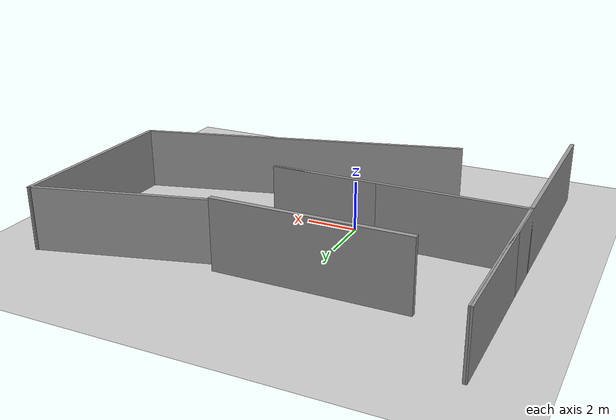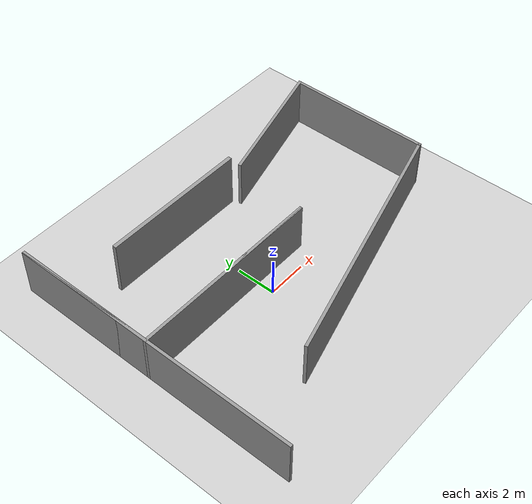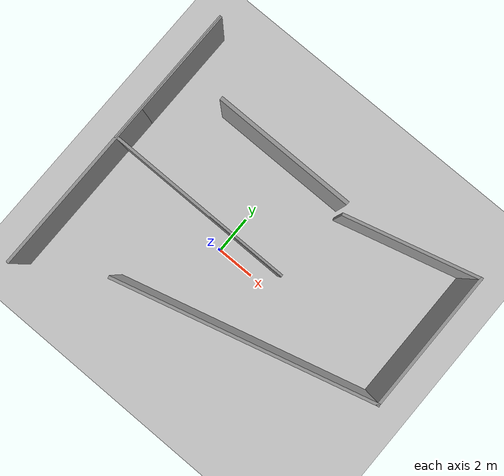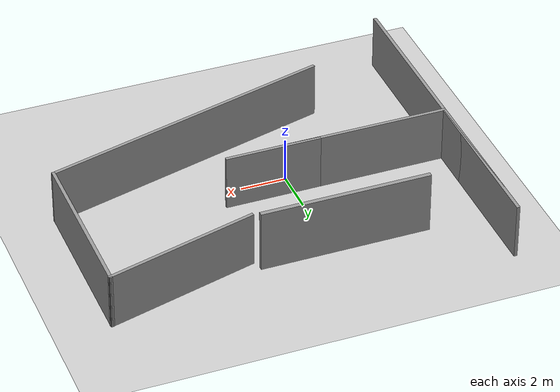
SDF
<sdf version="1.7">
 <world name="default">
  <light name="sun" type="directional">
   <pose>0 0 10 0 -0 0</pose>
   <diffuse>0.8 0.8 0.8 1</diffuse>
   <specular>0.2 0.2 0.2 1</specular>
   <attenuation>
    <range>1000</range>
    <constant>0.9</constant>
    <linear>0.01</linear>
    <quadratic>0.001</quadratic>
   </attenuation>
   <direction>-0.5 0.1 -0.9</direction>
   <spot><inner_angle>0</inner_angle><outer_angle>0</outer_angle><falloff>0</falloff></spot>
  </light>
  <model name="ground_plane">
   <static>1</static>
   <link name="link">
    <collision name="collision">
     <geometry><plane><normal>0 0 1</normal><size>100 100</size></plane></geometry>
     <surface><friction><ode><mu>100</mu><mu2>50</mu2></ode></friction></surface>
    </collision>
    <visual name="visual">
     <cast_shadows>0</cast_shadows>
     <geometry><plane><normal>0 0 1</normal><size>100 100</size></plane></geometry>
     <material>
      <script><uri>file://media/materials/scripts/gazebo.material</uri><name>Gazebo/Grey</name></script>
     </material>
    </visual>
   </link>
  </model>
  <gravity>0 0 -9.8</gravity>
  <magnetic_field>6e-06 2.3e-05 -4.2e-05</magnetic_field>
  <atmosphere type="adiabatic"/>
  <physics type="ode">
   <max_step_size>0.001</max_step_size>
   <real_time_factor>1</real_time_factor>
   <real_time_update_rate>1000</real_time_update_rate>
  </physics>
  <scene><ambient>0.4 0.4 0.4 1</ambient><background>0.7 0.7 0.7 1</background><shadows>1</shadows></scene>
  <audio><device>default</device></audio>
  <spherical_coordinates>
   <surface_model>EARTH_WGS84</surface_model>
   <latitude_deg>0</latitude_deg>
   <longitude_deg>0</longitude_deg>
   <elevation>0</elevation>
   <heading_deg>0</heading_deg>
  </spherical_coordinates>
  <model name="grey_wall">
   <static>1</static>
   <link name="link">
    <pose>0 0 1.4 0 -0 0</pose>
    <collision name="collision"><geometry><box><size>7.5 0.2 2.8</size></box></geometry></collision>
    <visual name="visual">
     <cast_shadows>0</cast_shadows>
     <geometry><box><size>7.5 0.2 2.8</size></box></geometry>
     <material>
      <script>
       <uri>model://grey_wall/materials/scripts</uri>
       <uri>model://grey_wall/materials/textures</uri>
       <name>vrc/grey_wall</name>
      </script>
     </material>
    </visual>
   </link>
   <pose>-0.562498 5.33275 0 0 -0 0</pose>
  </model>
  <model name="wall">
   <pose>1.56953 0.844436 0 0 -0 0</pose>
   <link name="Wall_12">
    <collision name="Wall_12_Collision">
     <geometry><box><size>13.5 0.15 2.5</size></box></geometry>
     <pose>0 0 1.25 0 -0 0</pose>
    </collision>
    <visual name="Wall_12_Visual">
     <pose>0 0 1.25 0 -0 0</pose>
     <geometry><box><size>13.5 0.15 2.5</size></box></geometry>
     <material>
      <script><uri>file://media/materials/scripts/gazebo.material</uri><name>Gazebo/Grey</name></script>
      <ambient>1 1 1 1</ambient>
     </material>
     <meta><layer>0</layer></meta>
    </visual>
    <pose>1.99207 -3.2695 0 0 -0 0.261799</pose>
   </link>
   <link name="Wall_13">
    <collision name="Wall_13_Collision">
     <geometry><box><size>7.5 0.15 2.5</size></box></geometry>
     <pose>0 0 1.25 0 -0 0</pose>
    </collision>
    <visual name="Wall_13_Visual">
     <pose>0 0 1.25 0 -0 0</pose>
     <geometry><box><size>7.5 0.15 2.5</size></box></geometry>
     <material>
      <script><uri>file://media/materials/scripts/gazebo.material</uri><name>Gazebo/Grey</name></script>
      <ambient>1 1 1 1</ambient>
     </material>
     <meta><layer>0</layer></meta>
    </visual>
    <pose>8.43962 2.13312 0 0 -0 1.5708</pose>
   </link>
   <link name="Wall_14">
    <collision name="Wall_14_Collision">
     <geometry><box><size>7 0.15 2.5</size></box></geometry>
     <pose>0 0 1.25 0 -0 0</pose>
    </collision>
    <visual name="Wall_14_Visual">
     <pose>0 0 1.25 0 -0 0</pose>
     <geometry><box><size>7 0.15 2.5</size></box></geometry>
     <material>
      <script><uri>file://media/materials/scripts/gazebo.material</uri><name>Gazebo/Grey</name></script>
      <ambient>1 1 1 1</ambient>
     </material>
     <meta><layer>0</layer></meta>
    </visual>
    <pose>5.13133 4.92166 0 0 -0 -2.87979</pose>
   </link>
   <link name="Wall_16">
    <collision name="Wall_16_Collision">
     <geometry><box><size>4.25 0.15 2.5</size></box></geometry>
     <pose>0 0 1.25 0 -0 0</pose>
    </collision>
    <visual name="Wall_16_Visual">
     <pose>0 0 1.25 0 -0 0</pose>
     <geometry><box><size>4.25 0.15 2.5</size></box></geometry>
     <material>
      <script><uri>file://media/materials/scripts/gazebo.material</uri><name>Gazebo/Grey</name></script>
      <ambient>1 1 1 1</ambient>
     </material>
     <meta><layer>0</layer></meta>
    </visual>
    <pose>-0.65648 0.075 0 0 -0 0</pose>
   </link>
   <link name="Wall_17">
    <collision name="Wall_17_Collision">
     <geometry><box><size>10 0.15 2.5</size></box></geometry>
     <pose>0 0 1.25 0 -0 0</pose>
    </collision>
    <visual name="Wall_17_Visual">
     <pose>0 0 1.25 0 -0 0</pose>
     <geometry><box><size>10 0.15 2.5</size></box></geometry>
     <material>
      <script><uri>file://media/materials/scripts/gazebo.material</uri><name>Gazebo/Grey</name></script>
      <ambient>1 1 1 1</ambient>
     </material>
     <meta><layer>0</layer></meta>
    </visual>
    <pose>-3.53148 0.075 0 0 -0 3.14159</pose>
   </link>
   <link name="Wall_18">
    <collision name="Wall_18_Collision">
     <geometry><box><size>7.5 0.15 2.5</size></box></geometry>
     <pose>0 0 1.25 0 -0 0</pose>
    </collision>
    <visual name="Wall_18_Visual">
     <pose>0 0 1.25 0 -0 0</pose>
     <geometry><box><size>7.5 0.15 2.5</size></box></geometry>
     <material>
      <script><uri>file://media/materials/scripts/gazebo.material</uri><name>Gazebo/Grey</name></script>
      <ambient>1 1 1 1</ambient>
     </material>
     <meta><layer>0</layer></meta>
    </visual>
    <pose>-8.45648 3.75 0 0 -0 1.5708</pose>
   </link>
   <link name="Wall_19">
    <collision name="Wall_19_Collision">
     <geometry><box><size>15 0.15 2.5</size></box></geometry>
     <pose>0 0 1.25 0 -0 0</pose>
    </collision>
    <visual name="Wall_19_Visual">
     <pose>0 0 1.25 0 -0 0</pose>
     <geometry><box><size>15 0.15 2.5</size></box></geometry>
     <material>
      <script><uri>file://media/materials/scripts/gazebo.material</uri><name>Gazebo/Grey</name></script>
      <ambient>1 1 1 1</ambient>
     </material>
     <meta><layer>0</layer></meta>
    </visual>
    <pose>-8.45648 -0 0 0 -0 -1.5708</pose>
   </link>
   <static>1</static>
  </model>
 </world>
</sdf>
